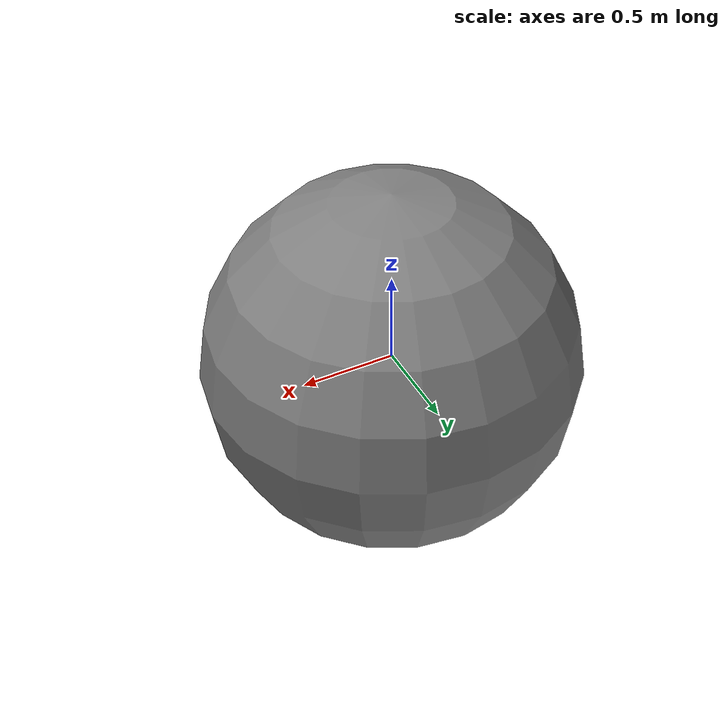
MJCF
<mujoco model="Model with a variety of joints">
  <worldbody>
    <body>
      <geom size="1"/>
      <joint name="slide_joint" type="slide"/>
    </body>

    <body>
      <geom size="1"/>
      <freejoint name="free_joint"/>
      <body>
        <geom size="1"/>
        <joint name="hinge_joint" type="hinge"/>
      </body>
    </body>

    <body>
      <geom size="1"/>
      <joint name="ball_joint" type="ball"/>
    </body>
  </worldbody>
</mujoco>
